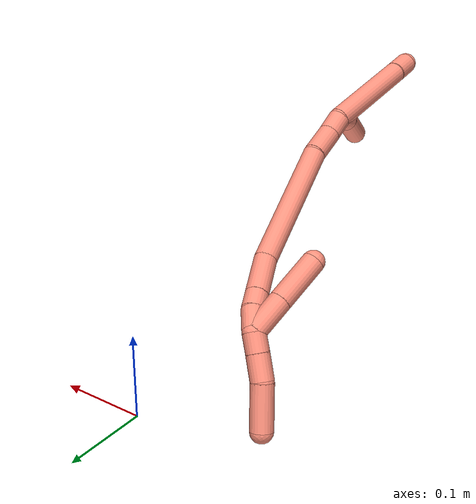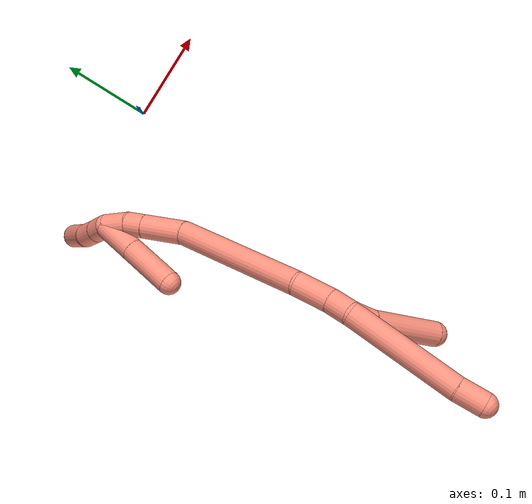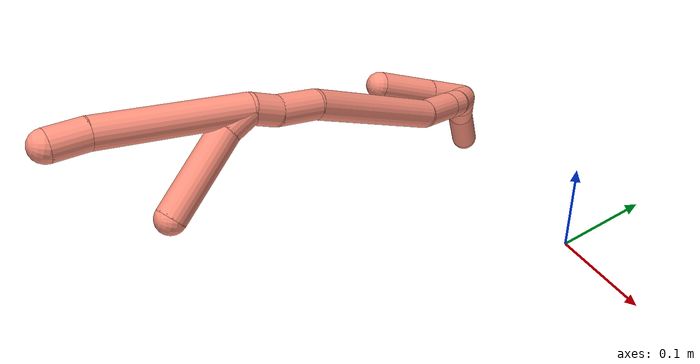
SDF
<sdf version="1.7">
 <world name="default">
  <model name="16">
   <static>0</static>
   <link name="16">
    <collision name="collision-cylinder-e_1_2_8">
     <pose>-0.00161 -0.013299 0.058713 0.222753 -0.026737 -0.00299</pose>
     <geometry><cylinder><radius>0.0125</radius><length>0.120444</length></cylinder></geometry>
     <surface>
      <friction><ode><mu>1.16</mu><mu2>1.16</mu2><slip1>0</slip1><slip2>0</slip2></ode></friction>
      <contact><ode><kp>1e+06</kp><kd>1</kd><max_vel>0</max_vel><min_depth>0.001</min_depth></ode></contact>
     </surface>
    </collision>
    <visual name="visual-cylinder-e_1_2_8">
     <pose>-0.00161 -0.013299 0.058713 0.222753 -0.026737 -0.00299</pose>
     <geometry><cylinder><radius>0.0125</radius><length>0.120444</length></cylinder></geometry>
     <material><ambient>1 0.576471 0.494118 1</ambient></material>
    </visual>
    <collision name="collision-cylinder-e_2_8_6">
     <pose>-0.002697 -0.031458 0.131373 0.335323 0.035421 0.005996</pose>
     <geometry><cylinder><radius>0.0125</radius><length>0.029556</length></cylinder></geometry>
     <surface>
      <friction><ode><mu>1.16</mu><mu2>1.16</mu2><slip1>0</slip1><slip2>0</slip2></ode></friction>
      <contact><ode><kp>1e+06</kp><kd>1</kd><max_vel>0</max_vel><min_depth>0.001</min_depth></ode></contact>
     </surface>
    </collision>
    <visual name="visual-cylinder-e_2_8_6">
     <pose>-0.002697 -0.031458 0.131373 0.335323 0.035421 0.005996</pose>
     <geometry><cylinder><radius>0.0125</radius><length>0.029556</length></cylinder></geometry>
     <material><ambient>1 0.576471 0.494118 1</ambient></material>
    </visual>
    <collision name="collision-cylinder-e_1_2_9">
     <pose>-0.000444 -0.008674 0.00795 0.828961 -0.037745 -0.016608</pose>
     <geometry><cylinder><radius>0.0125</radius><length>0.023549</length></cylinder></geometry>
     <surface>
      <friction><ode><mu>1.16</mu><mu2>1.16</mu2><slip1>0</slip1><slip2>0</slip2></ode></friction>
      <contact><ode><kp>1e+06</kp><kd>1</kd><max_vel>0</max_vel><min_depth>0.001</min_depth></ode></contact>
     </surface>
    </collision>
    <visual name="visual-cylinder-e_1_2_9">
     <pose>-0.000444 -0.008674 0.00795 0.828961 -0.037745 -0.016608</pose>
     <geometry><cylinder><radius>0.0125</radius><length>0.023549</length></cylinder></geometry>
     <material><ambient>1 0.576471 0.494118 1</ambient></material>
    </visual>
    <collision name="collision-cylinder-e_2_9_5">
     <pose>0.001309 -0.050981 0.033934 1.07859 0.05751 0.034424</pose>
     <geometry><cylinder><radius>0.0125</radius><length>0.076451</length></cylinder></geometry>
     <surface>
      <friction><ode><mu>1.16</mu><mu2>1.16</mu2><slip1>0</slip1><slip2>0</slip2></ode></friction>
      <contact><ode><kp>1e+06</kp><kd>1</kd><max_vel>0</max_vel><min_depth>0.001</min_depth></ode></contact>
     </surface>
    </collision>
    <visual name="visual-cylinder-e_2_9_5">
     <pose>0.001309 -0.050981 0.033934 1.07859 0.05751 0.034424</pose>
     <geometry><cylinder><radius>0.0125</radius><length>0.076451</length></cylinder></geometry>
     <material><ambient>1 0.576471 0.494118 1</ambient></material>
    </visual>
    <collision name="collision-cylinder-e_1_2_10">
     <pose>-0.001584 -0.000371 -0.012326 3.11149 -0.127784 -2.6795</pose>
     <geometry><cylinder><radius>0.0125</radius><length>0.024866</length></cylinder></geometry>
     <surface>
      <friction><ode><mu>1.16</mu><mu2>1.16</mu2><slip1>0</slip1><slip2>0</slip2></ode></friction>
      <contact><ode><kp>1e+06</kp><kd>1</kd><max_vel>0</max_vel><min_depth>0.001</min_depth></ode></contact>
     </surface>
    </collision>
    <visual name="visual-cylinder-e_1_2_10">
     <pose>-0.001584 -0.000371 -0.012326 3.11149 -0.127784 -2.6795</pose>
     <geometry><cylinder><radius>0.0125</radius><length>0.024866</length></cylinder></geometry>
     <material><ambient>1 0.576471 0.494118 1</ambient></material>
    </visual>
    <collision name="collision-cylinder-e_2_10_11">
     <pose>-0.005929 0.002641 -0.043165 -2.96086 -0.145637 1.35562</pose>
     <geometry><cylinder><radius>0.0125</radius><length>0.038043</length></cylinder></geometry>
     <surface>
      <friction><ode><mu>1.16</mu><mu2>1.16</mu2><slip1>0</slip1><slip2>0</slip2></ode></friction>
      <contact><ode><kp>1e+06</kp><kd>1</kd><max_vel>0</max_vel><min_depth>0.001</min_depth></ode></contact>
     </surface>
    </collision>
    <visual name="visual-cylinder-e_2_10_11">
     <pose>-0.005929 0.002641 -0.043165 -2.96086 -0.145637 1.35562</pose>
     <geometry><cylinder><radius>0.0125</radius><length>0.038043</length></cylinder></geometry>
     <material><ambient>1 0.576471 0.494118 1</ambient></material>
    </visual>
    <collision name="collision-cylinder-e_3_11_12">
     <pose>-0.027116 0.003245 -0.131311 3.10172 -0.258493 -2.83712</pose>
     <geometry><cylinder><radius>0.0125</radius><length>0.144165</length></cylinder></geometry>
     <surface>
      <friction><ode><mu>1.16</mu><mu2>1.16</mu2><slip1>0</slip1><slip2>0</slip2></ode></friction>
      <contact><ode><kp>1e+06</kp><kd>1</kd><max_vel>0</max_vel><min_depth>0.001</min_depth></ode></contact>
     </surface>
    </collision>
    <visual name="visual-cylinder-e_3_11_12">
     <pose>-0.027116 0.003245 -0.131311 3.10172 -0.258493 -2.83712</pose>
     <geometry><cylinder><radius>0.0125</radius><length>0.144165</length></cylinder></geometry>
     <material><ambient>1 0.576471 0.494118 1</ambient></material>
    </visual>
    <collision name="collision-cylinder-e_4_12_13">
     <pose>-0.055456 0.0037 -0.22156 -2.98605 -0.443519 2.47602</pose>
     <geometry><cylinder><radius>0.0125</radius><length>0.046207</length></cylinder></geometry>
     <surface>
      <friction><ode><mu>1.16</mu><mu2>1.16</mu2><slip1>0</slip1><slip2>0</slip2></ode></friction>
      <contact><ode><kp>1e+06</kp><kd>1</kd><max_vel>0</max_vel><min_depth>0.001</min_depth></ode></contact>
     </surface>
    </collision>
    <visual name="visual-cylinder-e_4_12_13">
     <pose>-0.055456 0.0037 -0.22156 -2.98605 -0.443519 2.47602</pose>
     <geometry><cylinder><radius>0.0125</radius><length>0.046207</length></cylinder></geometry>
     <material><ambient>1 0.576471 0.494118 1</ambient></material>
    </visual>
    <collision name="collision-cylinder-e_5_13_14">
     <pose>-0.069688 0.008251 -0.251204 -2.99664 -0.442005 2.51647</pose>
     <geometry><cylinder><radius>0.0125</radius><length>0.020188</length></cylinder></geometry>
     <surface>
      <friction><ode><mu>1.16</mu><mu2>1.16</mu2><slip1>0</slip1><slip2>0</slip2></ode></friction>
      <contact><ode><kp>1e+06</kp><kd>1</kd><max_vel>0</max_vel><min_depth>0.001</min_depth></ode></contact>
     </surface>
    </collision>
    <visual name="visual-cylinder-e_5_13_14">
     <pose>-0.069688 0.008251 -0.251204 -2.99664 -0.442005 2.51647</pose>
     <geometry><cylinder><radius>0.0125</radius><length>0.020188</length></cylinder></geometry>
     <material><ambient>1 0.576471 0.494118 1</ambient></material>
    </visual>
    <collision name="collision-cylinder-e_6_14_1">
     <pose>-0.082345 0.011391 -0.270387 -2.96402 -0.67983 2.64839</pose>
     <geometry><cylinder><radius>0.0125</radius><length>0.026531</length></cylinder></geometry>
     <surface>
      <friction><ode><mu>1.16</mu><mu2>1.16</mu2><slip1>0</slip1><slip2>0</slip2></ode></friction>
      <contact><ode><kp>1e+06</kp><kd>1</kd><max_vel>0</max_vel><min_depth>0.001</min_depth></ode></contact>
     </surface>
    </collision>
    <visual name="visual-cylinder-e_6_14_1">
     <pose>-0.082345 0.011391 -0.270387 -2.96402 -0.67983 2.64839</pose>
     <geometry><cylinder><radius>0.0125</radius><length>0.026531</length></cylinder></geometry>
     <material><ambient>1 0.576471 0.494118 1</ambient></material>
    </visual>
    <collision name="collision-cylinder-e_1_1_15">
     <pose>-0.098131 0.008918 -0.287095 2.56143 -0.759874 -1.85781</pose>
     <geometry><cylinder><radius>0.0125</radius><length>0.02162</length></cylinder></geometry>
     <surface>
      <friction><ode><mu>1.16</mu><mu2>1.16</mu2><slip1>0</slip1><slip2>0</slip2></ode></friction>
      <contact><ode><kp>1e+06</kp><kd>1</kd><max_vel>0</max_vel><min_depth>0.001</min_depth></ode></contact>
     </surface>
    </collision>
    <visual name="visual-cylinder-e_1_1_15">
     <pose>-0.098131 0.008918 -0.287095 2.56143 -0.759874 -1.85781</pose>
     <geometry><cylinder><radius>0.0125</radius><length>0.02162</length></cylinder></geometry>
     <material><ambient>1 0.576471 0.494118 1</ambient></material>
    </visual>
    <collision name="collision-cylinder-e_2_15_16">
     <pose>-0.115153 -0.001337 -0.302334 2.54022 -0.737839 -1.78961</pose>
     <geometry><cylinder><radius>0.0125</radius><length>0.028469</length></cylinder></geometry>
     <surface>
      <friction><ode><mu>1.16</mu><mu2>1.16</mu2><slip1>0</slip1><slip2>0</slip2></ode></friction>
      <contact><ode><kp>1e+06</kp><kd>1</kd><max_vel>0</max_vel><min_depth>0.001</min_depth></ode></contact>
     </surface>
    </collision>
    <visual name="visual-cylinder-e_2_15_16">
     <pose>-0.115153 -0.001337 -0.302334 2.54022 -0.737839 -1.78961</pose>
     <geometry><cylinder><radius>0.0125</radius><length>0.028469</length></cylinder></geometry>
     <material><ambient>1 0.576471 0.494118 1</ambient></material>
    </visual>
    <collision name="collision-cylinder-e_3_16_4">
     <pose>-0.137001 -0.021645 -0.327336 2.42029 -0.514145 -1.21749</pose>
     <geometry><cylinder><radius>0.0125</radius><length>0.049911</length></cylinder></geometry>
     <surface>
      <friction><ode><mu>1.16</mu><mu2>1.16</mu2><slip1>0</slip1><slip2>0</slip2></ode></friction>
      <contact><ode><kp>1e+06</kp><kd>1</kd><max_vel>0</max_vel><min_depth>0.001</min_depth></ode></contact>
     </surface>
    </collision>
    <visual name="visual-cylinder-e_3_16_4">
     <pose>-0.137001 -0.021645 -0.327336 2.42029 -0.514145 -1.21749</pose>
     <geometry><cylinder><radius>0.0125</radius><length>0.049911</length></cylinder></geometry>
     <material><ambient>1 0.576471 0.494118 1</ambient></material>
    </visual>
    <collision name="collision-cylinder-e_1_1_17">
     <pose>-0.090897 0.013943 -0.259107 -0.034008 -0.009896 0.000168</pose>
     <geometry><cylinder><radius>0.0125</radius><length>0.042895</length></cylinder></geometry>
     <surface>
      <friction><ode><mu>1.16</mu><mu2>1.16</mu2><slip1>0</slip1><slip2>0</slip2></ode></friction>
      <contact><ode><kp>1e+06</kp><kd>1</kd><max_vel>0</max_vel><min_depth>0.001</min_depth></ode></contact>
     </surface>
    </collision>
    <visual name="visual-cylinder-e_1_1_17">
     <pose>-0.090897 0.013943 -0.259107 -0.034008 -0.009896 0.000168</pose>
     <geometry><cylinder><radius>0.0125</radius><length>0.042895</length></cylinder></geometry>
     <material><ambient>1 0.576471 0.494118 1</ambient></material>
    </visual>
    <collision name="collision-cylinder-e_2_17_3">
     <pose>-0.091357 0.015673 -0.209139 -0.035074 -0.008667 0.000152</pose>
     <geometry><cylinder><radius>0.0125</radius><length>0.057105</length></cylinder></geometry>
     <surface>
      <friction><ode><mu>1.16</mu><mu2>1.16</mu2><slip1>0</slip1><slip2>0</slip2></ode></friction>
      <contact><ode><kp>1e+06</kp><kd>1</kd><max_vel>0</max_vel><min_depth>0.001</min_depth></ode></contact>
     </surface>
    </collision>
    <visual name="visual-cylinder-e_2_17_3">
     <pose>-0.091357 0.015673 -0.209139 -0.035074 -0.008667 0.000152</pose>
     <geometry><cylinder><radius>0.0125</radius><length>0.057105</length></cylinder></geometry>
     <material><ambient>1 0.576471 0.494118 1</ambient></material>
    </visual>
    <collision name="collision-sphere-3">
     <pose>-0.091604 0.016674 -0.180605 0 -0 0</pose>
     <geometry><sphere><radius>0.0125</radius></sphere></geometry>
     <surface>
      <friction><ode><mu>1.16</mu><mu2>1.16</mu2><slip1>0</slip1><slip2>0</slip2></ode></friction>
      <contact><ode><kp>1e+06</kp><kd>1</kd><max_vel>0</max_vel><min_depth>0.001</min_depth></ode></contact>
     </surface>
    </collision>
    <visual name="visual-sphere-3">
     <pose>-0.091604 0.016674 -0.180605 0 -0 0</pose>
     <geometry><sphere><radius>0.0125</radius></sphere></geometry>
     <material><ambient>1 0.576471 0.494118 1</ambient></material>
    </visual>
    <collision name="collision-sphere-17">
     <pose>-0.091109 0.014672 -0.237673 0 -0 0</pose>
     <geometry><sphere><radius>0.0125</radius></sphere></geometry>
     <surface>
      <friction><ode><mu>1.16</mu><mu2>1.16</mu2><slip1>0</slip1><slip2>0</slip2></ode></friction>
      <contact><ode><kp>1e+06</kp><kd>1</kd><max_vel>0</max_vel><min_depth>0.001</min_depth></ode></contact>
     </surface>
    </collision>
    <visual name="visual-sphere-17">
     <pose>-0.091109 0.014672 -0.237673 0 -0 0</pose>
     <geometry><sphere><radius>0.0125</radius></sphere></geometry>
     <material><ambient>1 0.576471 0.494118 1</ambient></material>
    </visual>
    <collision name="collision-sphere-4">
     <pose>-0.149274 -0.035994 -0.343653 0 -0 0</pose>
     <geometry><sphere><radius>0.0125</radius></sphere></geometry>
     <surface>
      <friction><ode><mu>1.16</mu><mu2>1.16</mu2><slip1>0</slip1><slip2>0</slip2></ode></friction>
      <contact><ode><kp>1e+06</kp><kd>1</kd><max_vel>0</max_vel><min_depth>0.001</min_depth></ode></contact>
     </surface>
    </collision>
    <visual name="visual-sphere-4">
     <pose>-0.149274 -0.035994 -0.343653 0 -0 0</pose>
     <geometry><sphere><radius>0.0125</radius></sphere></geometry>
     <material><ambient>1 0.576471 0.494118 1</ambient></material>
    </visual>
    <collision name="collision-sphere-16">
     <pose>-0.124728 -0.007296 -0.311019 0 -0 0</pose>
     <geometry><sphere><radius>0.0125</radius></sphere></geometry>
     <surface>
      <friction><ode><mu>1.16</mu><mu2>1.16</mu2><slip1>0</slip1><slip2>0</slip2></ode></friction>
      <contact><ode><kp>1e+06</kp><kd>1</kd><max_vel>0</max_vel><min_depth>0.001</min_depth></ode></contact>
     </surface>
    </collision>
    <visual name="visual-sphere-16">
     <pose>-0.124728 -0.007296 -0.311019 0 -0 0</pose>
     <geometry><sphere><radius>0.0125</radius></sphere></geometry>
     <material><ambient>1 0.576471 0.494118 1</ambient></material>
    </visual>
    <collision name="collision-sphere-15">
     <pose>-0.105577 0.004622 -0.293649 0 -0 0</pose>
     <geometry><sphere><radius>0.0125</radius></sphere></geometry>
     <surface>
      <friction><ode><mu>1.16</mu><mu2>1.16</mu2><slip1>0</slip1><slip2>0</slip2></ode></friction>
      <contact><ode><kp>1e+06</kp><kd>1</kd><max_vel>0</max_vel><min_depth>0.001</min_depth></ode></contact>
     </surface>
    </collision>
    <visual name="visual-sphere-15">
     <pose>-0.105577 0.004622 -0.293649 0 -0 0</pose>
     <geometry><sphere><radius>0.0125</radius></sphere></geometry>
     <material><ambient>1 0.576471 0.494118 1</ambient></material>
    </visual>
    <collision name="collision-sphere-1">
     <pose>-0.090685 0.013214 -0.280541 0 -0 0</pose>
     <geometry><sphere><radius>0.0125</radius></sphere></geometry>
     <surface>
      <friction><ode><mu>1.16</mu><mu2>1.16</mu2><slip1>0</slip1><slip2>0</slip2></ode></friction>
      <contact><ode><kp>1e+06</kp><kd>1</kd><max_vel>0</max_vel><min_depth>0.001</min_depth></ode></contact>
     </surface>
    </collision>
    <visual name="visual-sphere-1">
     <pose>-0.090685 0.013214 -0.280541 0 -0 0</pose>
     <geometry><sphere><radius>0.0125</radius></sphere></geometry>
     <material><ambient>1 0.576471 0.494118 1</ambient></material>
    </visual>
    <collision name="collision-sphere-14">
     <pose>-0.074006 0.009569 -0.260233 0 -0 0</pose>
     <geometry><sphere><radius>0.0125</radius></sphere></geometry>
     <surface>
      <friction><ode><mu>1.16</mu><mu2>1.16</mu2><slip1>0</slip1><slip2>0</slip2></ode></friction>
      <contact><ode><kp>1e+06</kp><kd>1</kd><max_vel>0</max_vel><min_depth>0.001</min_depth></ode></contact>
     </surface>
    </collision>
    <visual name="visual-sphere-14">
     <pose>-0.074006 0.009569 -0.260233 0 -0 0</pose>
     <geometry><sphere><radius>0.0125</radius></sphere></geometry>
     <material><ambient>1 0.576471 0.494118 1</ambient></material>
    </visual>
    <collision name="collision-sphere-13">
     <pose>-0.06537 0.006933 -0.242176 0 -0 0</pose>
     <geometry><sphere><radius>0.0125</radius></sphere></geometry>
     <surface>
      <friction><ode><mu>1.16</mu><mu2>1.16</mu2><slip1>0</slip1><slip2>0</slip2></ode></friction>
      <contact><ode><kp>1e+06</kp><kd>1</kd><max_vel>0</max_vel><min_depth>0.001</min_depth></ode></contact>
     </surface>
    </collision>
    <visual name="visual-sphere-13">
     <pose>-0.06537 0.006933 -0.242176 0 -0 0</pose>
     <geometry><sphere><radius>0.0125</radius></sphere></geometry>
     <material><ambient>1 0.576471 0.494118 1</ambient></material>
    </visual>
    <collision name="collision-sphere-12">
     <pose>-0.045542 0.000467 -0.200943 0 -0 0</pose>
     <geometry><sphere><radius>0.0125</radius></sphere></geometry>
     <surface>
      <friction><ode><mu>1.16</mu><mu2>1.16</mu2><slip1>0</slip1><slip2>0</slip2></ode></friction>
      <contact><ode><kp>1e+06</kp><kd>1</kd><max_vel>0</max_vel><min_depth>0.001</min_depth></ode></contact>
     </surface>
    </collision>
    <visual name="visual-sphere-12">
     <pose>-0.045542 0.000467 -0.200943 0 -0 0</pose>
     <geometry><sphere><radius>0.0125</radius></sphere></geometry>
     <material><ambient>1 0.576471 0.494118 1</ambient></material>
    </visual>
    <collision name="collision-sphere-11">
     <pose>-0.00869 0.006024 -0.061679 0 -0 0</pose>
     <geometry><sphere><radius>0.0125</radius></sphere></geometry>
     <surface>
      <friction><ode><mu>1.16</mu><mu2>1.16</mu2><slip1>0</slip1><slip2>0</slip2></ode></friction>
      <contact><ode><kp>1e+06</kp><kd>1</kd><max_vel>0</max_vel><min_depth>0.001</min_depth></ode></contact>
     </surface>
    </collision>
    <visual name="visual-sphere-11">
     <pose>-0.00869 0.006024 -0.061679 0 -0 0</pose>
     <geometry><sphere><radius>0.0125</radius></sphere></geometry>
     <material><ambient>1 0.576471 0.494118 1</ambient></material>
    </visual>
    <collision name="collision-sphere-8">
     <pose>-0.00322 -0.026599 0.117427 0 -0 0</pose>
     <geometry><sphere><radius>0.0125</radius></sphere></geometry>
     <surface>
      <friction><ode><mu>1.16</mu><mu2>1.16</mu2><slip1>0</slip1><slip2>0</slip2></ode></friction>
      <contact><ode><kp>1e+06</kp><kd>1</kd><max_vel>0</max_vel><min_depth>0.001</min_depth></ode></contact>
     </surface>
    </collision>
    <visual name="visual-sphere-8">
     <pose>-0.00322 -0.026599 0.117427 0 -0 0</pose>
     <geometry><sphere><radius>0.0125</radius></sphere></geometry>
     <material><ambient>1 0.576471 0.494118 1</ambient></material>
    </visual>
    <collision name="collision-sphere-2">
     <geometry><sphere><radius>0.0125</radius></sphere></geometry>
     <surface>
      <friction><ode><mu>1.16</mu><mu2>1.16</mu2><slip1>0</slip1><slip2>0</slip2></ode></friction>
      <contact><ode><kp>1e+06</kp><kd>1</kd><max_vel>0</max_vel><min_depth>0.001</min_depth></ode></contact>
     </surface>
    </collision>
    <visual name="visual-sphere-2">
     <geometry><sphere><radius>0.0125</radius></sphere></geometry>
     <material><ambient>1 0.576471 0.494118 1</ambient></material>
    </visual>
    <collision name="collision-sphere-9">
     <pose>-0.000889 -0.017348 0.015899 0 -0 0</pose>
     <geometry><sphere><radius>0.0125</radius></sphere></geometry>
     <surface>
      <friction><ode><mu>1.16</mu><mu2>1.16</mu2><slip1>0</slip1><slip2>0</slip2></ode></friction>
      <contact><ode><kp>1e+06</kp><kd>1</kd><max_vel>0</max_vel><min_depth>0.001</min_depth></ode></contact>
     </surface>
    </collision>
    <visual name="visual-sphere-9">
     <pose>-0.000889 -0.017348 0.015899 0 -0 0</pose>
     <geometry><sphere><radius>0.0125</radius></sphere></geometry>
     <material><ambient>1 0.576471 0.494118 1</ambient></material>
    </visual>
    <collision name="collision-sphere-6">
     <pose>-0.002173 -0.036318 0.145319 0 -0 0</pose>
     <geometry><sphere><radius>0.0125</radius></sphere></geometry>
     <surface>
      <friction><ode><mu>1.16</mu><mu2>1.16</mu2><slip1>0</slip1><slip2>0</slip2></ode></friction>
      <contact><ode><kp>1e+06</kp><kd>1</kd><max_vel>0</max_vel><min_depth>0.001</min_depth></ode></contact>
     </surface>
    </collision>
    <visual name="visual-sphere-6">
     <pose>-0.002173 -0.036318 0.145319 0 -0 0</pose>
     <geometry><sphere><radius>0.0125</radius></sphere></geometry>
     <material><ambient>1 0.576471 0.494118 1</ambient></material>
    </visual>
    <collision name="collision-sphere-5">
     <pose>0.003506 -0.084613 0.051968 0 -0 0</pose>
     <geometry><sphere><radius>0.0125</radius></sphere></geometry>
     <surface>
      <friction><ode><mu>1.16</mu><mu2>1.16</mu2><slip1>0</slip1><slip2>0</slip2></ode></friction>
      <contact><ode><kp>1e+06</kp><kd>1</kd><max_vel>0</max_vel><min_depth>0.001</min_depth></ode></contact>
     </surface>
    </collision>
    <visual name="visual-sphere-5">
     <pose>0.003506 -0.084613 0.051968 0 -0 0</pose>
     <geometry><sphere><radius>0.0125</radius></sphere></geometry>
     <material><ambient>1 0.576471 0.494118 1</ambient></material>
    </visual>
    <collision name="collision-sphere-10">
     <pose>-0.003169 -0.000742 -0.024652 0 -0 0</pose>
     <geometry><sphere><radius>0.0125</radius></sphere></geometry>
     <surface>
      <friction><ode><mu>1.16</mu><mu2>1.16</mu2><slip1>0</slip1><slip2>0</slip2></ode></friction>
      <contact><ode><kp>1e+06</kp><kd>1</kd><max_vel>0</max_vel><min_depth>0.001</min_depth></ode></contact>
     </surface>
    </collision>
    <visual name="visual-sphere-10">
     <pose>-0.003169 -0.000742 -0.024652 0 -0 0</pose>
     <geometry><sphere><radius>0.0125</radius></sphere></geometry>
     <material><ambient>1 0.576471 0.494118 1</ambient></material>
    </visual>
    <inertial>
     <pose>-0.042488 -0.006489 -0.11178 0 -0 0</pose>
     <mass>0.75</mass>
     <inertia>
      <ixx>-0.000108</ixx>
      <ixy>0</ixy>
      <ixz>0</ixz>
      <iyy>0.00037</iyy>
      <iyz>0</iyz>
      <izz>0.000167</izz>
     </inertia>
    </inertial>
   </link>
   <pose>-0.064579 -0.295208 0.26932 1.0921 -0.346956 0.055157</pose>
  </model>
 </world>
</sdf>
